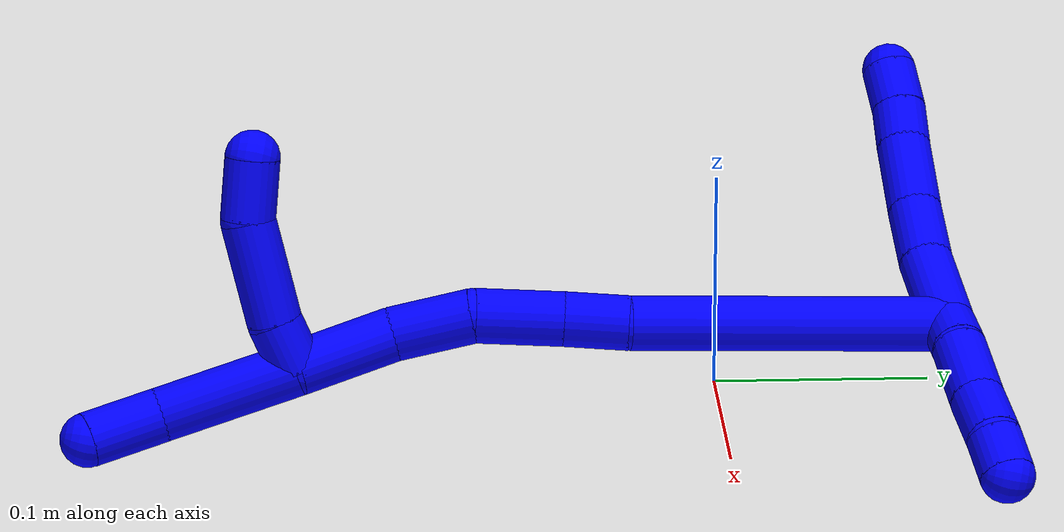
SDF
<sdf version="1.7">
 <world name="default">
  <model name="photoneo_s_sensor">
   <static>1</static>
   <pose>0 0 2 1.57079 1.57079 3.14159</pose>
   <link name="link">
    <inertial><mass>0.1</mass></inertial>
    <sensor name="sensor" type="depth">
     <update_rate>30</update_rate>
     <camera>
      <horizontal_fov>1.22</horizontal_fov>
      <image><width>1920</width><height>1200</height><format>B8G8R8</format></image>
      <clip><near>0.1</near><far>4</far></clip>
      <depth_camera><output>points</output></depth_camera>
     </camera>
     <plugin name="camera_plugin" filename="libgazebo_ros_depth_camera.so">
      <baseline>0.2</baseline>
      <alwaysOn>1</alwaysOn>
      <updateRate>0.0</updateRate>
      <cameraName>camera_ir</cameraName>
      <imageTopicName>/camera/color/image_raw</imageTopicName>
      <cameraInfoTopicName>/camera/color/camera_info</cameraInfoTopicName>
      <depthImageTopicName>/camera/depth/image_raw</depthImageTopicName>
      <depthImageCameraInfoTopicName>/camera/depth/camera_info</depthImageCameraInfoTopicName>
      <pointCloudTopicName>/camera/depth/points</pointCloudTopicName>
      <frameName>fr_optical</frameName>
      <pointCloudCutoff>0.1</pointCloudCutoff>
      <pointCloudCutoffMax>2.0</pointCloudCutoffMax>
      <distortionK1>0</distortionK1>
      <distortionK2>0</distortionK2>
      <distortionK3>0</distortionK3>
      <distortionT1>0</distortionT1>
      <distortionT2>0</distortionT2>
      <CxPrime>0</CxPrime>
      <Cx>0</Cx>
      <Cy>0</Cy>
      <focalLength>0</focalLength>
      <hackBaseline>0</hackBaseline>
     </plugin>
    </sensor>
   </link>
  </model>
  <model name="bin">
   <static>1</static>
   <link name="bottom">
    <collision name="collision-bottom">
     <pose>0 0 -0.01 0 -0 0</pose>
     <geometry><box><size>0.8 0.6 0.02</size></box></geometry>
     <surface>
      <friction><ode><mu>100</mu><mu2>100</mu2></ode></friction>
      <contact><collide_bitmask>65535</collide_bitmask></contact>
     </surface>
    </collision>
   </link>
   <link name="west_wall">
    <collision name="collision-west_wall">
     <pose>-0.41 0 0.1 0 -0 0</pose>
     <geometry><box><size>0.02 0.6 0.2</size></box></geometry>
     <surface>
      <friction><ode><mu>100</mu><mu2>100</mu2></ode></friction>
      <contact><collide_bitmask>65535</collide_bitmask></contact>
     </surface>
    </collision>
   </link>
   <link name="east_wall">
    <collision name="collision-east_wall">
     <pose>0.41 0 0.1 0 -0 0</pose>
     <geometry><box><size>0.02 0.6 0.2</size></box></geometry>
     <surface>
      <friction><ode><mu>100</mu><mu2>100</mu2></ode></friction>
      <contact><collide_bitmask>65535</collide_bitmask></contact>
     </surface>
    </collision>
   </link>
   <link name="south_wall">
    <collision name="collision-south_wall">
     <pose>0 -0.31 0.1 0 -0 0</pose>
     <geometry><box><size>0.8 0.02 0.2</size></box></geometry>
     <surface>
      <friction><ode><mu>100</mu><mu2>100</mu2></ode></friction>
      <contact><collide_bitmask>65535</collide_bitmask></contact>
     </surface>
    </collision>
   </link>
   <link name="north_wall">
    <collision name="collision-north_wall">
     <pose>0 0.31 0.1 0 -0 0</pose>
     <geometry><box><size>0.8 0.02 0.2</size></box></geometry>
     <surface>
      <friction><ode><mu>100</mu><mu2>100</mu2></ode></friction>
      <contact><collide_bitmask>65535</collide_bitmask></contact>
     </surface>
    </collision>
   </link>
  </model>
  <model name="1">
   <static>0</static>
   <link name="1">
    <collision name="collision-cylinder-e_1_2_8">
     <pose>0.011242 -0.015315 0.005384 1.23272 0.605689 0.435678</pose>
     <geometry><cylinder><radius>0.0125</radius><length>0.039493</length></cylinder></geometry>
     <surface>
      <friction><ode><mu>1.16</mu><mu2>1.16</mu2><slip1>0</slip1><slip2>0</slip2></ode></friction>
      <contact><ode><kp>1e+06</kp><kd>1</kd><max_vel>0</max_vel><min_depth>0.001</min_depth></ode></contact>
     </surface>
    </collision>
    <visual name="visual-cylinder-e_1_2_8">
     <pose>0.011242 -0.015315 0.005384 1.23272 0.605689 0.435678</pose>
     <geometry><cylinder><radius>0.0125</radius><length>0.039493</length></cylinder></geometry>
     <material><ambient>0 0 1 1</ambient></material>
    </visual>
    <collision name="collision-cylinder-e_2_8_9">
     <pose>0.030309 -0.043398 0.013876 1.33209 0.53706 0.425929</pose>
     <geometry><cylinder><radius>0.0125</radius><length>0.030587</length></cylinder></geometry>
     <surface>
      <friction><ode><mu>1.16</mu><mu2>1.16</mu2><slip1>0</slip1><slip2>0</slip2></ode></friction>
      <contact><ode><kp>1e+06</kp><kd>1</kd><max_vel>0</max_vel><min_depth>0.001</min_depth></ode></contact>
     </surface>
    </collision>
    <visual name="visual-cylinder-e_2_8_9">
     <pose>0.030309 -0.043398 0.013876 1.33209 0.53706 0.425929</pose>
     <geometry><cylinder><radius>0.0125</radius><length>0.030587</length></cylinder></geometry>
     <material><ambient>0 0 1 1</ambient></material>
    </visual>
    <collision name="collision-cylinder-e_3_9_10">
     <pose>0.046727 -0.072305 0.020591 1.35087 0.479246 0.386575</pose>
     <geometry><cylinder><radius>0.0125</radius><length>0.037276</length></cylinder></geometry>
     <surface>
      <friction><ode><mu>1.16</mu><mu2>1.16</mu2><slip1>0</slip1><slip2>0</slip2></ode></friction>
      <contact><ode><kp>1e+06</kp><kd>1</kd><max_vel>0</max_vel><min_depth>0.001</min_depth></ode></contact>
     </surface>
    </collision>
    <visual name="visual-cylinder-e_3_9_10">
     <pose>0.046727 -0.072305 0.020591 1.35087 0.479246 0.386575</pose>
     <geometry><cylinder><radius>0.0125</radius><length>0.037276</length></cylinder></geometry>
     <material><ambient>0 0 1 1</ambient></material>
    </visual>
    <collision name="collision-cylinder-e_4_10_11">
     <pose>0.059353 -0.09802 0.02615 1.36972 0.39129 0.320938</pose>
     <geometry><cylinder><radius>0.0125</radius><length>0.021141</length></cylinder></geometry>
     <surface>
      <friction><ode><mu>1.16</mu><mu2>1.16</mu2><slip1>0</slip1><slip2>0</slip2></ode></friction>
      <contact><ode><kp>1e+06</kp><kd>1</kd><max_vel>0</max_vel><min_depth>0.001</min_depth></ode></contact>
     </surface>
    </collision>
    <visual name="visual-cylinder-e_4_10_11">
     <pose>0.059353 -0.09802 0.02615 1.36972 0.39129 0.320938</pose>
     <geometry><cylinder><radius>0.0125</radius><length>0.021141</length></cylinder></geometry>
     <material><ambient>0 0 1 1</ambient></material>
    </visual>
    <collision name="collision-cylinder-e_5_11_6">
     <pose>0.067126 -0.117139 0.031343 1.24339 0.355453 0.255981</pose>
     <geometry><cylinder><radius>0.0125</radius><length>0.021503</length></cylinder></geometry>
     <surface>
      <friction><ode><mu>1.16</mu><mu2>1.16</mu2><slip1>0</slip1><slip2>0</slip2></ode></friction>
      <contact><ode><kp>1e+06</kp><kd>1</kd><max_vel>0</max_vel><min_depth>0.001</min_depth></ode></contact>
     </surface>
    </collision>
    <visual name="visual-cylinder-e_5_11_6">
     <pose>0.067126 -0.117139 0.031343 1.24339 0.355453 0.255981</pose>
     <geometry><cylinder><radius>0.0125</radius><length>0.021503</length></cylinder></geometry>
     <material><ambient>0 0 1 1</ambient></material>
    </visual>
    <collision name="collision-cylinder-e_1_2_12">
     <pose>-0.007767 0.006339 -0.001923 -1.86534 -0.864625 1.11312</pose>
     <geometry><cylinder><radius>0.0125</radius><length>0.020416</length></cylinder></geometry>
     <surface>
      <friction><ode><mu>1.16</mu><mu2>1.16</mu2><slip1>0</slip1><slip2>0</slip2></ode></friction>
      <contact><ode><kp>1e+06</kp><kd>1</kd><max_vel>0</max_vel><min_depth>0.001</min_depth></ode></contact>
     </surface>
    </collision>
    <visual name="visual-cylinder-e_1_2_12">
     <pose>-0.007767 0.006339 -0.001923 -1.86534 -0.864625 1.11312</pose>
     <geometry><cylinder><radius>0.0125</radius><length>0.020416</length></cylinder></geometry>
     <material><ambient>0 0 1 1</ambient></material>
    </visual>
    <collision name="collision-cylinder-e_2_12_13">
     <pose>-0.025839 0.025112 -0.00786 -1.88305 -0.667848 0.889393</pose>
     <geometry><cylinder><radius>0.0125</radius><length>0.033283</length></cylinder></geometry>
     <surface>
      <friction><ode><mu>1.16</mu><mu2>1.16</mu2><slip1>0</slip1><slip2>0</slip2></ode></friction>
      <contact><ode><kp>1e+06</kp><kd>1</kd><max_vel>0</max_vel><min_depth>0.001</min_depth></ode></contact>
     </surface>
    </collision>
    <visual name="visual-cylinder-e_2_12_13">
     <pose>-0.025839 0.025112 -0.00786 -1.88305 -0.667848 0.889393</pose>
     <geometry><cylinder><radius>0.0125</radius><length>0.033283</length></cylinder></geometry>
     <material><ambient>0 0 1 1</ambient></material>
    </visual>
    <collision name="collision-cylinder-e_3_13_14">
     <pose>-0.044448 0.046653 -0.015252 -1.92606 -0.707314 0.97586</pose>
     <geometry><cylinder><radius>0.0125</radius><length>0.025556</length></cylinder></geometry>
     <surface>
      <friction><ode><mu>1.16</mu><mu2>1.16</mu2><slip1>0</slip1><slip2>0</slip2></ode></friction>
      <contact><ode><kp>1e+06</kp><kd>1</kd><max_vel>0</max_vel><min_depth>0.001</min_depth></ode></contact>
     </surface>
    </collision>
    <visual name="visual-cylinder-e_3_13_14">
     <pose>-0.044448 0.046653 -0.015252 -1.92606 -0.707314 0.97586</pose>
     <geometry><cylinder><radius>0.0125</radius><length>0.025556</length></cylinder></geometry>
     <material><ambient>0 0 1 1</ambient></material>
    </visual>
    <collision name="collision-cylinder-e_4_14_5">
     <pose>-0.057581 0.064277 -0.022051 -1.95264 -0.484304 0.700567</pose>
     <geometry><cylinder><radius>0.0125</radius><length>0.020745</length></cylinder></geometry>
     <surface>
      <friction><ode><mu>1.16</mu><mu2>1.16</mu2><slip1>0</slip1><slip2>0</slip2></ode></friction>
      <contact><ode><kp>1e+06</kp><kd>1</kd><max_vel>0</max_vel><min_depth>0.001</min_depth></ode></contact>
     </surface>
    </collision>
    <visual name="visual-cylinder-e_4_14_5">
     <pose>-0.057581 0.064277 -0.022051 -1.95264 -0.484304 0.700567</pose>
     <geometry><cylinder><radius>0.0125</radius><length>0.020745</length></cylinder></geometry>
     <material><ambient>0 0 1 1</ambient></material>
    </visual>
    <collision name="collision-cylinder-e_1_2_15">
     <pose>0.002178 0.014013 0.071268 -0.194152 0.029982 -0.00292</pose>
     <geometry><cylinder><radius>0.0125</radius><length>0.145331</length></cylinder></geometry>
     <surface>
      <friction><ode><mu>1.16</mu><mu2>1.16</mu2><slip1>0</slip1><slip2>0</slip2></ode></friction>
      <contact><ode><kp>1e+06</kp><kd>1</kd><max_vel>0</max_vel><min_depth>0.001</min_depth></ode></contact>
     </surface>
    </collision>
    <visual name="visual-cylinder-e_1_2_15">
     <pose>0.002178 0.014013 0.071268 -0.194152 0.029982 -0.00292</pose>
     <geometry><cylinder><radius>0.0125</radius><length>0.145331</length></cylinder></geometry>
     <material><ambient>0 0 1 1</ambient></material>
    </visual>
    <collision name="collision-cylinder-e_2_15_16">
     <pose>0.006902 0.029686 0.157201 -0.112692 0.170784 -0.009657</pose>
     <geometry><cylinder><radius>0.0125</radius><length>0.029951</length></cylinder></geometry>
     <surface>
      <friction><ode><mu>1.16</mu><mu2>1.16</mu2><slip1>0</slip1><slip2>0</slip2></ode></friction>
      <contact><ode><kp>1e+06</kp><kd>1</kd><max_vel>0</max_vel><min_depth>0.001</min_depth></ode></contact>
     </surface>
    </collision>
    <visual name="visual-cylinder-e_2_15_16">
     <pose>0.006902 0.029686 0.157201 -0.112692 0.170784 -0.009657</pose>
     <geometry><cylinder><radius>0.0125</radius><length>0.029951</length></cylinder></geometry>
     <material><ambient>0 0 1 1</ambient></material>
    </visual>
    <collision name="collision-cylinder-e_3_16_17">
     <pose>0.009933 0.034578 0.191961 -0.159467 0.023888 -0.001909</pose>
     <geometry><cylinder><radius>0.0125</radius><length>0.040719</length></cylinder></geometry>
     <surface>
      <friction><ode><mu>1.16</mu><mu2>1.16</mu2><slip1>0</slip1><slip2>0</slip2></ode></friction>
      <contact><ode><kp>1e+06</kp><kd>1</kd><max_vel>0</max_vel><min_depth>0.001</min_depth></ode></contact>
     </surface>
    </collision>
    <visual name="visual-cylinder-e_3_16_17">
     <pose>0.009933 0.034578 0.191961 -0.159467 0.023888 -0.001909</pose>
     <geometry><cylinder><radius>0.0125</radius><length>0.040719</length></cylinder></geometry>
     <material><ambient>0 0 1 1</ambient></material>
    </visual>
    <collision name="collision-cylinder-e_4_17_18">
     <pose>0.01544 0.044792 0.228824 -0.394537 0.269657 -0.054212</pose>
     <geometry><cylinder><radius>0.0125</radius><length>0.037689</length></cylinder></geometry>
     <surface>
      <friction><ode><mu>1.16</mu><mu2>1.16</mu2><slip1>0</slip1><slip2>0</slip2></ode></friction>
      <contact><ode><kp>1e+06</kp><kd>1</kd><max_vel>0</max_vel><min_depth>0.001</min_depth></ode></contact>
     </surface>
    </collision>
    <visual name="visual-cylinder-e_4_17_18">
     <pose>0.01544 0.044792 0.228824 -0.394537 0.269657 -0.054212</pose>
     <geometry><cylinder><radius>0.0125</radius><length>0.037689</length></cylinder></geometry>
     <material><ambient>0 0 1 1</ambient></material>
    </visual>
    <collision name="collision-cylinder-e_5_18_1">
     <pose>0.020358 0.06377 0.265396 -0.544666 -0.004398 0.001228</pose>
     <geometry><cylinder><radius>0.0125</radius><length>0.046309</length></cylinder></geometry>
     <surface>
      <friction><ode><mu>1.16</mu><mu2>1.16</mu2><slip1>0</slip1><slip2>0</slip2></ode></friction>
      <contact><ode><kp>1e+06</kp><kd>1</kd><max_vel>0</max_vel><min_depth>0.001</min_depth></ode></contact>
     </surface>
    </collision>
    <visual name="visual-cylinder-e_5_18_1">
     <pose>0.020358 0.06377 0.265396 -0.544666 -0.004398 0.001228</pose>
     <geometry><cylinder><radius>0.0125</radius><length>0.046309</length></cylinder></geometry>
     <material><ambient>0 0 1 1</ambient></material>
    </visual>
    <collision name="collision-cylinder-e_1_1_19">
     <pose>0.016515 0.066855 0.292315 0.897075 -0.317016 -0.153553</pose>
     <geometry><cylinder><radius>0.0125</radius><length>0.024005</length></cylinder></geometry>
     <surface>
      <friction><ode><mu>1.16</mu><mu2>1.16</mu2><slip1>0</slip1><slip2>0</slip2></ode></friction>
      <contact><ode><kp>1e+06</kp><kd>1</kd><max_vel>0</max_vel><min_depth>0.001</min_depth></ode></contact>
     </surface>
    </collision>
    <visual name="visual-cylinder-e_1_1_19">
     <pose>0.016515 0.066855 0.292315 0.897075 -0.317016 -0.153553</pose>
     <geometry><cylinder><radius>0.0125</radius><length>0.024005</length></cylinder></geometry>
     <material><ambient>0 0 1 1</ambient></material>
    </visual>
    <collision name="collision-cylinder-e_2_19_20">
     <pose>0.005187 0.038001 0.30998 1.08418 -0.324402 -0.196477</pose>
     <geometry><cylinder><radius>0.0125</radius><length>0.047602</length></cylinder></geometry>
     <surface>
      <friction><ode><mu>1.16</mu><mu2>1.16</mu2><slip1>0</slip1><slip2>0</slip2></ode></friction>
      <contact><ode><kp>1e+06</kp><kd>1</kd><max_vel>0</max_vel><min_depth>0.001</min_depth></ode></contact>
     </surface>
    </collision>
    <visual name="visual-cylinder-e_2_19_20">
     <pose>0.005187 0.038001 0.30998 1.08418 -0.324402 -0.196477</pose>
     <geometry><cylinder><radius>0.0125</radius><length>0.047602</length></cylinder></geometry>
     <material><ambient>0 0 1 1</ambient></material>
    </visual>
    <collision name="collision-cylinder-e_3_20_4">
     <pose>-0.007148 0.004817 0.322425 1.42867 -0.341092 -0.296468</pose>
     <geometry><cylinder><radius>0.0125</radius><length>0.028393</length></cylinder></geometry>
     <surface>
      <friction><ode><mu>1.16</mu><mu2>1.16</mu2><slip1>0</slip1><slip2>0</slip2></ode></friction>
      <contact><ode><kp>1e+06</kp><kd>1</kd><max_vel>0</max_vel><min_depth>0.001</min_depth></ode></contact>
     </surface>
    </collision>
    <visual name="visual-cylinder-e_3_20_4">
     <pose>-0.007148 0.004817 0.322425 1.42867 -0.341092 -0.296468</pose>
     <geometry><cylinder><radius>0.0125</radius><length>0.028393</length></cylinder></geometry>
     <material><ambient>0 0 1 1</ambient></material>
    </visual>
    <collision name="collision-cylinder-e_1_1_21">
     <pose>0.027181 0.091071 0.312789 -0.506436 0.216062 -0.056115</pose>
     <geometry><cylinder><radius>0.0125</radius><length>0.0646</length></cylinder></geometry>
     <surface>
      <friction><ode><mu>1.16</mu><mu2>1.16</mu2><slip1>0</slip1><slip2>0</slip2></ode></friction>
      <contact><ode><kp>1e+06</kp><kd>1</kd><max_vel>0</max_vel><min_depth>0.001</min_depth></ode></contact>
     </surface>
    </collision>
    <visual name="visual-cylinder-e_1_1_21">
     <pose>0.027181 0.091071 0.312789 -0.506436 0.216062 -0.056115</pose>
     <geometry><cylinder><radius>0.0125</radius><length>0.0646</length></cylinder></geometry>
     <material><ambient>0 0 1 1</ambient></material>
    </visual>
    <collision name="collision-cylinder-e_2_21_3">
     <pose>0.032078 0.115436 0.355446 -0.541464 -0.114801 0.031895</pose>
     <geometry><cylinder><radius>0.0125</radius><length>0.0354</length></cylinder></geometry>
     <surface>
      <friction><ode><mu>1.16</mu><mu2>1.16</mu2><slip1>0</slip1><slip2>0</slip2></ode></friction>
      <contact><ode><kp>1e+06</kp><kd>1</kd><max_vel>0</max_vel><min_depth>0.001</min_depth></ode></contact>
     </surface>
    </collision>
    <visual name="visual-cylinder-e_2_21_3">
     <pose>0.032078 0.115436 0.355446 -0.541464 -0.114801 0.031895</pose>
     <geometry><cylinder><radius>0.0125</radius><length>0.0354</length></cylinder></geometry>
     <material><ambient>0 0 1 1</ambient></material>
    </visual>
    <collision name="collision-sphere-3">
     <pose>0.030051 0.124499 0.370515 0 -0 0</pose>
     <geometry><sphere><radius>0.0125</radius></sphere></geometry>
     <surface>
      <friction><ode><mu>1.16</mu><mu2>1.16</mu2><slip1>0</slip1><slip2>0</slip2></ode></friction>
      <contact><ode><kp>1e+06</kp><kd>1</kd><max_vel>0</max_vel><min_depth>0.001</min_depth></ode></contact>
     </surface>
    </collision>
    <visual name="visual-sphere-3">
     <pose>0.030051 0.124499 0.370515 0 -0 0</pose>
     <geometry><sphere><radius>0.0125</radius></sphere></geometry>
     <material><ambient>0 0 1 1</ambient></material>
    </visual>
    <collision name="collision-sphere-21">
     <pose>0.034106 0.106374 0.340378 0 -0 0</pose>
     <geometry><sphere><radius>0.0125</radius></sphere></geometry>
     <surface>
      <friction><ode><mu>1.16</mu><mu2>1.16</mu2><slip1>0</slip1><slip2>0</slip2></ode></friction>
      <contact><ode><kp>1e+06</kp><kd>1</kd><max_vel>0</max_vel><min_depth>0.001</min_depth></ode></contact>
     </surface>
    </collision>
    <visual name="visual-sphere-21">
     <pose>0.034106 0.106374 0.340378 0 -0 0</pose>
     <geometry><sphere><radius>0.0125</radius></sphere></geometry>
     <material><ambient>0 0 1 1</ambient></material>
    </visual>
    <collision name="collision-sphere-4">
     <pose>-0.011897 -0.008427 0.32432 0 -0 0</pose>
     <geometry><sphere><radius>0.0125</radius></sphere></geometry>
     <surface>
      <friction><ode><mu>1.16</mu><mu2>1.16</mu2><slip1>0</slip1><slip2>0</slip2></ode></friction>
      <contact><ode><kp>1e+06</kp><kd>1</kd><max_vel>0</max_vel><min_depth>0.001</min_depth></ode></contact>
     </surface>
    </collision>
    <visual name="visual-sphere-4">
     <pose>-0.011897 -0.008427 0.32432 0 -0 0</pose>
     <geometry><sphere><radius>0.0125</radius></sphere></geometry>
     <material><ambient>0 0 1 1</ambient></material>
    </visual>
    <collision name="collision-sphere-20">
     <pose>-0.002399 0.018061 0.32053 0 -0 0</pose>
     <geometry><sphere><radius>0.0125</radius></sphere></geometry>
     <surface>
      <friction><ode><mu>1.16</mu><mu2>1.16</mu2><slip1>0</slip1><slip2>0</slip2></ode></friction>
      <contact><ode><kp>1e+06</kp><kd>1</kd><max_vel>0</max_vel><min_depth>0.001</min_depth></ode></contact>
     </surface>
    </collision>
    <visual name="visual-sphere-20">
     <pose>-0.002399 0.018061 0.32053 0 -0 0</pose>
     <geometry><sphere><radius>0.0125</radius></sphere></geometry>
     <material><ambient>0 0 1 1</ambient></material>
    </visual>
    <collision name="collision-sphere-6">
     <pose>0.070868 -0.126683 0.034585 0 -0 0</pose>
     <geometry><sphere><radius>0.0125</radius></sphere></geometry>
     <surface>
      <friction><ode><mu>1.16</mu><mu2>1.16</mu2><slip1>0</slip1><slip2>0</slip2></ode></friction>
      <contact><ode><kp>1e+06</kp><kd>1</kd><max_vel>0</max_vel><min_depth>0.001</min_depth></ode></contact>
     </surface>
    </collision>
    <visual name="visual-sphere-6">
     <pose>0.070868 -0.126683 0.034585 0 -0 0</pose>
     <geometry><sphere><radius>0.0125</radius></sphere></geometry>
     <material><ambient>0 0 1 1</ambient></material>
    </visual>
    <collision name="collision-sphere-11">
     <pose>0.063384 -0.107595 0.028102 0 -0 0</pose>
     <geometry><sphere><radius>0.0125</radius></sphere></geometry>
     <surface>
      <friction><ode><mu>1.16</mu><mu2>1.16</mu2><slip1>0</slip1><slip2>0</slip2></ode></friction>
      <contact><ode><kp>1e+06</kp><kd>1</kd><max_vel>0</max_vel><min_depth>0.001</min_depth></ode></contact>
     </surface>
    </collision>
    <visual name="visual-sphere-11">
     <pose>0.063384 -0.107595 0.028102 0 -0 0</pose>
     <geometry><sphere><radius>0.0125</radius></sphere></geometry>
     <material><ambient>0 0 1 1</ambient></material>
    </visual>
    <collision name="collision-sphere-10">
     <pose>0.055322 -0.088445 0.024199 0 -0 0</pose>
     <geometry><sphere><radius>0.0125</radius></sphere></geometry>
     <surface>
      <friction><ode><mu>1.16</mu><mu2>1.16</mu2><slip1>0</slip1><slip2>0</slip2></ode></friction>
      <contact><ode><kp>1e+06</kp><kd>1</kd><max_vel>0</max_vel><min_depth>0.001</min_depth></ode></contact>
     </surface>
    </collision>
    <visual name="visual-sphere-10">
     <pose>0.055322 -0.088445 0.024199 0 -0 0</pose>
     <geometry><sphere><radius>0.0125</radius></sphere></geometry>
     <material><ambient>0 0 1 1</ambient></material>
    </visual>
    <collision name="collision-sphere-9">
     <pose>0.038133 -0.056165 0.016983 0 -0 0</pose>
     <geometry><sphere><radius>0.0125</radius></sphere></geometry>
     <surface>
      <friction><ode><mu>1.16</mu><mu2>1.16</mu2><slip1>0</slip1><slip2>0</slip2></ode></friction>
      <contact><ode><kp>1e+06</kp><kd>1</kd><max_vel>0</max_vel><min_depth>0.001</min_depth></ode></contact>
     </surface>
    </collision>
    <visual name="visual-sphere-9">
     <pose>0.038133 -0.056165 0.016983 0 -0 0</pose>
     <geometry><sphere><radius>0.0125</radius></sphere></geometry>
     <material><ambient>0 0 1 1</ambient></material>
    </visual>
    <collision name="collision-sphere-2">
     <geometry><sphere><radius>0.0125</radius></sphere></geometry>
     <surface>
      <friction><ode><mu>1.16</mu><mu2>1.16</mu2><slip1>0</slip1><slip2>0</slip2></ode></friction>
      <contact><ode><kp>1e+06</kp><kd>1</kd><max_vel>0</max_vel><min_depth>0.001</min_depth></ode></contact>
     </surface>
    </collision>
    <visual name="visual-sphere-2">
     <geometry><sphere><radius>0.0125</radius></sphere></geometry>
     <material><ambient>0 0 1 1</ambient></material>
    </visual>
    <collision name="collision-sphere-19">
     <pose>0.012773 0.057942 0.29943 0 -0 0</pose>
     <geometry><sphere><radius>0.0125</radius></sphere></geometry>
     <surface>
      <friction><ode><mu>1.16</mu><mu2>1.16</mu2><slip1>0</slip1><slip2>0</slip2></ode></friction>
      <contact><ode><kp>1e+06</kp><kd>1</kd><max_vel>0</max_vel><min_depth>0.001</min_depth></ode></contact>
     </surface>
    </collision>
    <visual name="visual-sphere-19">
     <pose>0.012773 0.057942 0.29943 0 -0 0</pose>
     <geometry><sphere><radius>0.0125</radius></sphere></geometry>
     <material><ambient>0 0 1 1</ambient></material>
    </visual>
    <collision name="collision-sphere-8">
     <pose>0.022484 -0.03063 0.010769 0 -0 0</pose>
     <geometry><sphere><radius>0.0125</radius></sphere></geometry>
     <surface>
      <friction><ode><mu>1.16</mu><mu2>1.16</mu2><slip1>0</slip1><slip2>0</slip2></ode></friction>
      <contact><ode><kp>1e+06</kp><kd>1</kd><max_vel>0</max_vel><min_depth>0.001</min_depth></ode></contact>
     </surface>
    </collision>
    <visual name="visual-sphere-8">
     <pose>0.022484 -0.03063 0.010769 0 -0 0</pose>
     <geometry><sphere><radius>0.0125</radius></sphere></geometry>
     <material><ambient>0 0 1 1</ambient></material>
    </visual>
    <collision name="collision-sphere-12">
     <pose>-0.015533 0.012678 -0.003846 0 -0 0</pose>
     <geometry><sphere><radius>0.0125</radius></sphere></geometry>
     <surface>
      <friction><ode><mu>1.16</mu><mu2>1.16</mu2><slip1>0</slip1><slip2>0</slip2></ode></friction>
      <contact><ode><kp>1e+06</kp><kd>1</kd><max_vel>0</max_vel><min_depth>0.001</min_depth></ode></contact>
     </surface>
    </collision>
    <visual name="visual-sphere-12">
     <pose>-0.015533 0.012678 -0.003846 0 -0 0</pose>
     <geometry><sphere><radius>0.0125</radius></sphere></geometry>
     <material><ambient>0 0 1 1</ambient></material>
    </visual>
    <collision name="collision-sphere-13">
     <pose>-0.036145 0.037546 -0.011874 0 -0 0</pose>
     <geometry><sphere><radius>0.0125</radius></sphere></geometry>
     <surface>
      <friction><ode><mu>1.16</mu><mu2>1.16</mu2><slip1>0</slip1><slip2>0</slip2></ode></friction>
      <contact><ode><kp>1e+06</kp><kd>1</kd><max_vel>0</max_vel><min_depth>0.001</min_depth></ode></contact>
     </surface>
    </collision>
    <visual name="visual-sphere-13">
     <pose>-0.036145 0.037546 -0.011874 0 -0 0</pose>
     <geometry><sphere><radius>0.0125</radius></sphere></geometry>
     <material><ambient>0 0 1 1</ambient></material>
    </visual>
    <collision name="collision-sphere-14">
     <pose>-0.052752 0.055759 -0.018631 0 -0 0</pose>
     <geometry><sphere><radius>0.0125</radius></sphere></geometry>
     <surface>
      <friction><ode><mu>1.16</mu><mu2>1.16</mu2><slip1>0</slip1><slip2>0</slip2></ode></friction>
      <contact><ode><kp>1e+06</kp><kd>1</kd><max_vel>0</max_vel><min_depth>0.001</min_depth></ode></contact>
     </surface>
    </collision>
    <visual name="visual-sphere-14">
     <pose>-0.052752 0.055759 -0.018631 0 -0 0</pose>
     <geometry><sphere><radius>0.0125</radius></sphere></geometry>
     <material><ambient>0 0 1 1</ambient></material>
    </visual>
    <collision name="collision-sphere-5">
     <pose>-0.06241 0.072796 -0.025472 0 -0 0</pose>
     <geometry><sphere><radius>0.0125</radius></sphere></geometry>
     <surface>
      <friction><ode><mu>1.16</mu><mu2>1.16</mu2><slip1>0</slip1><slip2>0</slip2></ode></friction>
      <contact><ode><kp>1e+06</kp><kd>1</kd><max_vel>0</max_vel><min_depth>0.001</min_depth></ode></contact>
     </surface>
    </collision>
    <visual name="visual-sphere-5">
     <pose>-0.06241 0.072796 -0.025472 0 -0 0</pose>
     <geometry><sphere><radius>0.0125</radius></sphere></geometry>
     <material><ambient>0 0 1 1</ambient></material>
    </visual>
    <collision name="collision-sphere-15">
     <pose>0.004357 0.028027 0.142537 0 -0 0</pose>
     <geometry><sphere><radius>0.0125</radius></sphere></geometry>
     <surface>
      <friction><ode><mu>1.16</mu><mu2>1.16</mu2><slip1>0</slip1><slip2>0</slip2></ode></friction>
      <contact><ode><kp>1e+06</kp><kd>1</kd><max_vel>0</max_vel><min_depth>0.001</min_depth></ode></contact>
     </surface>
    </collision>
    <visual name="visual-sphere-15">
     <pose>0.004357 0.028027 0.142537 0 -0 0</pose>
     <geometry><sphere><radius>0.0125</radius></sphere></geometry>
     <material><ambient>0 0 1 1</ambient></material>
    </visual>
    <collision name="collision-sphere-16">
     <pose>0.009447 0.031346 0.171865 0 -0 0</pose>
     <geometry><sphere><radius>0.0125</radius></sphere></geometry>
     <surface>
      <friction><ode><mu>1.16</mu><mu2>1.16</mu2><slip1>0</slip1><slip2>0</slip2></ode></friction>
      <contact><ode><kp>1e+06</kp><kd>1</kd><max_vel>0</max_vel><min_depth>0.001</min_depth></ode></contact>
     </surface>
    </collision>
    <visual name="visual-sphere-16">
     <pose>0.009447 0.031346 0.171865 0 -0 0</pose>
     <geometry><sphere><radius>0.0125</radius></sphere></geometry>
     <material><ambient>0 0 1 1</ambient></material>
    </visual>
    <collision name="collision-sphere-17">
     <pose>0.01042 0.03781 0.212056 0 -0 0</pose>
     <geometry><sphere><radius>0.0125</radius></sphere></geometry>
     <surface>
      <friction><ode><mu>1.16</mu><mu2>1.16</mu2><slip1>0</slip1><slip2>0</slip2></ode></friction>
      <contact><ode><kp>1e+06</kp><kd>1</kd><max_vel>0</max_vel><min_depth>0.001</min_depth></ode></contact>
     </surface>
    </collision>
    <visual name="visual-sphere-17">
     <pose>0.01042 0.03781 0.212056 0 -0 0</pose>
     <geometry><sphere><radius>0.0125</radius></sphere></geometry>
     <material><ambient>0 0 1 1</ambient></material>
    </visual>
    <collision name="collision-sphere-18">
     <pose>0.02046 0.051774 0.245593 0 -0 0</pose>
     <geometry><sphere><radius>0.0125</radius></sphere></geometry>
     <surface>
      <friction><ode><mu>1.16</mu><mu2>1.16</mu2><slip1>0</slip1><slip2>0</slip2></ode></friction>
      <contact><ode><kp>1e+06</kp><kd>1</kd><max_vel>0</max_vel><min_depth>0.001</min_depth></ode></contact>
     </surface>
    </collision>
    <visual name="visual-sphere-18">
     <pose>0.02046 0.051774 0.245593 0 -0 0</pose>
     <geometry><sphere><radius>0.0125</radius></sphere></geometry>
     <material><ambient>0 0 1 1</ambient></material>
    </visual>
    <collision name="collision-sphere-1">
     <pose>0.020256 0.075767 0.2852 0 -0 0</pose>
     <geometry><sphere><radius>0.0125</radius></sphere></geometry>
     <surface>
      <friction><ode><mu>1.16</mu><mu2>1.16</mu2><slip1>0</slip1><slip2>0</slip2></ode></friction>
      <contact><ode><kp>1e+06</kp><kd>1</kd><max_vel>0</max_vel><min_depth>0.001</min_depth></ode></contact>
     </surface>
    </collision>
    <visual name="visual-sphere-1">
     <pose>0.020256 0.075767 0.2852 0 -0 0</pose>
     <geometry><sphere><radius>0.0125</radius></sphere></geometry>
     <material><ambient>0 0 1 1</ambient></material>
    </visual>
    <inertial>
     <pose>0.010995 0.022357 0.145329 0 -0 0</pose>
     <mass>0.75</mass>
     <inertia>
      <ixx>0.000359</ixx>
      <ixy>0</ixy>
      <ixz>0</ixz>
      <iyy>0.000332</iyy>
      <iyz>0</iyz>
      <izz>-3.2e-05</izz>
     </inertia>
    </inertial>
   </link>
   <pose>0.064864 0.100847 0.050194 -1.3158 0.48726 -3.02754</pose>
  </model>
 </world>
</sdf>
